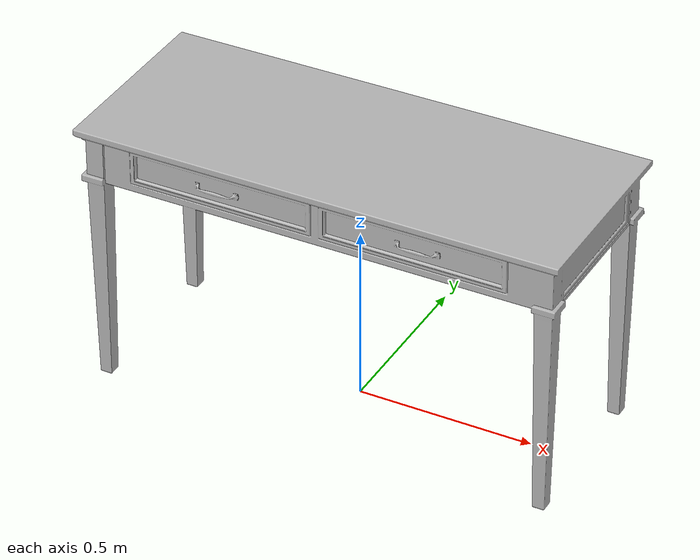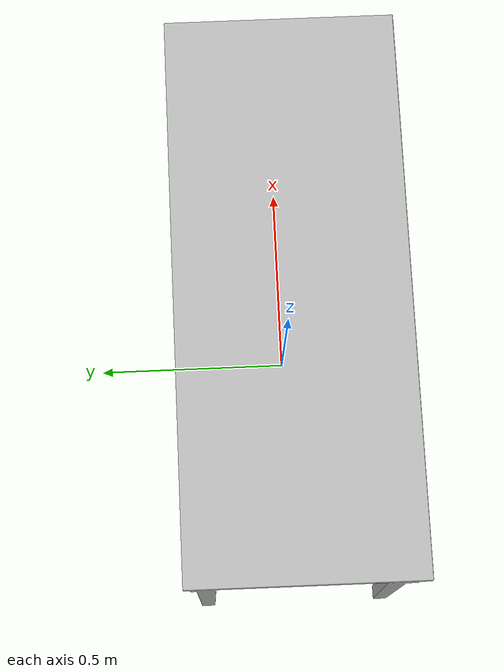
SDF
<sdf version="1.6">
	<model name="HomeOfficeDesks_O593758bd9853_lod0">
		<link name="main_link">
			<visual name="visual_RootNode">
				<geometry>
					<mesh>
						<uri>model://HomeOfficeDesks_O593758bd9853_lod0/meshes/visual_RootNode.dae</uri>
					</mesh>
				</geometry>
			</visual>
			<collision name="collision_RootNode_lod0_0">
				<geometry>
					<mesh>
						<uri>model://HomeOfficeDesks_O593758bd9853_lod0/meshes/collision_RootNode_lod0_0.dae</uri>
					</mesh>
				</geometry>
			</collision>
		</link>
	</model>
</sdf>
